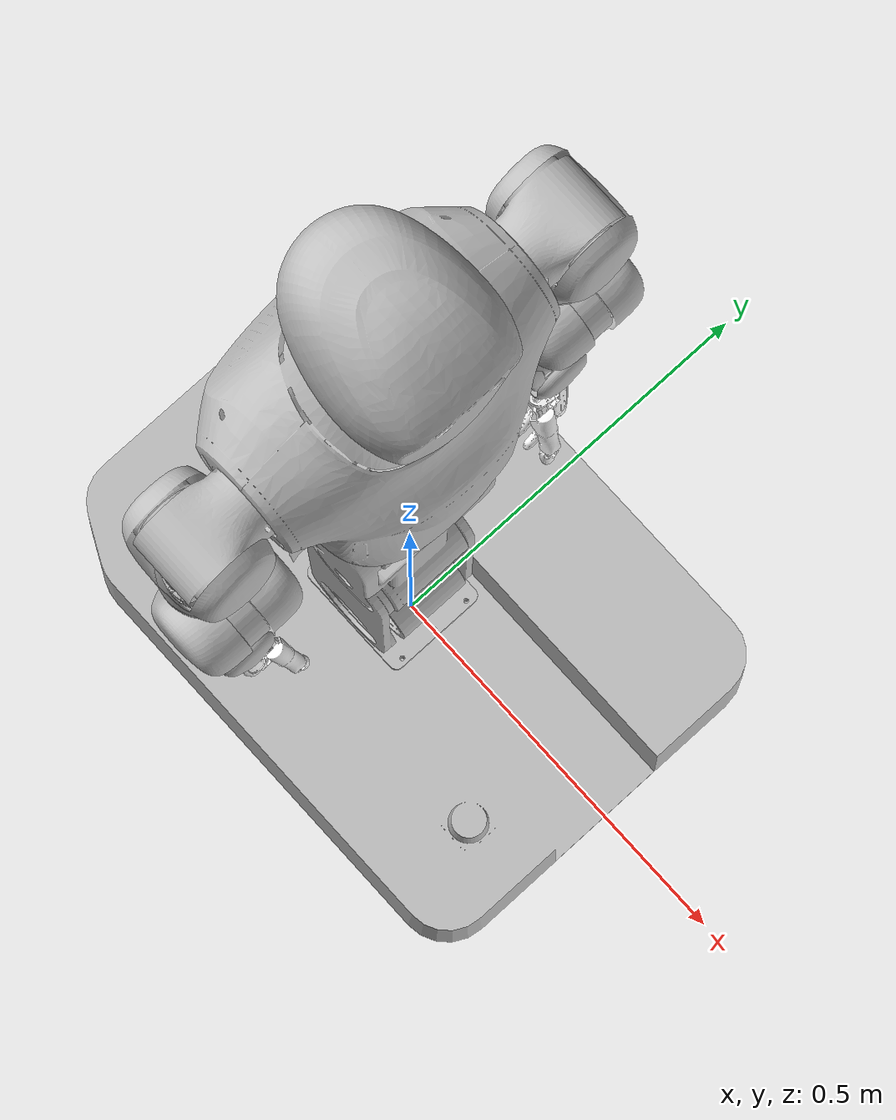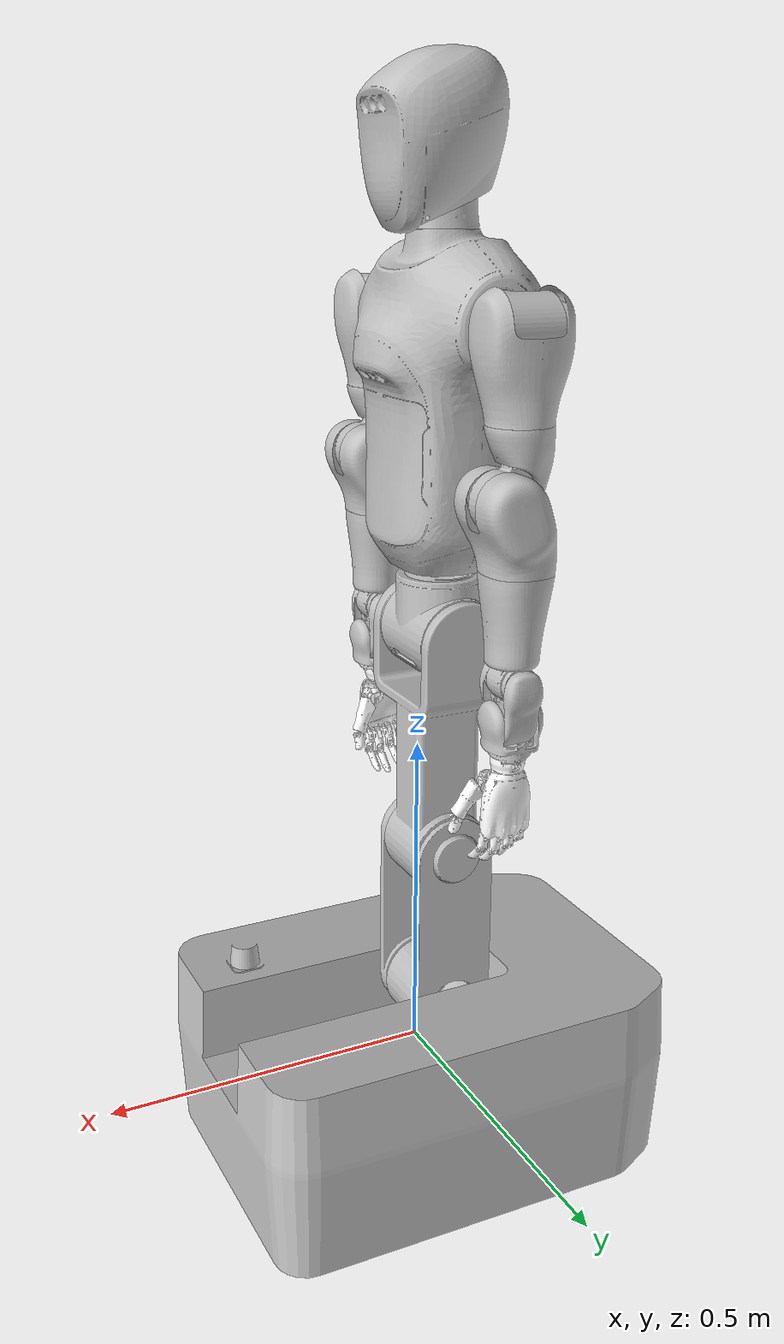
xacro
<?xml version="1.0"?>
<robot xmlns:xacro="http://www.ros.org/wiki/xacro" name="x100_with_rohand_lites">
    <xacro:arg name="initial_positions_file" default="initial_positions.yaml" />

    <!-- Import x100_with_rohand_lites urdf file -->
    <xacro:include filename="$(find x100_description)/urdf/x100_with_rohand_lites.urdf" />

    <!-- Import control_xacro -->
    <xacro:include filename="x100_with_rohand_lites.ros2_control.xacro" />

    <xacro:x100_with_rohand_lites_ros2_control name="FakeSystem" initial_positions_file="$(arg initial_positions_file)"/>

</robot>
